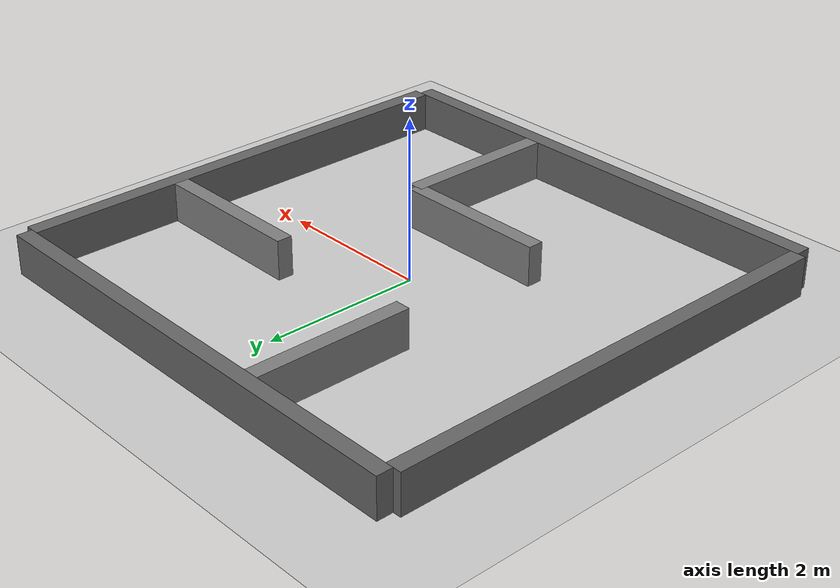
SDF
<?xml version="1.0" ?>
<sdf version="1.6">
  <world name="maze">
    <physics name="4ms" type="ignored">
      <max_step_size>0.004</max_step_size>
      <real_time_factor>1.0</real_time_factor>
      <real_time_update_rate>250</real_time_update_rate>
    </physics>
    <plugin
      filename="gz-sim-physics-system"
      name="gz::sim::systems::Physics">
    </plugin>
    <plugin
      filename="gz-sim-user-commands-system"
      name="gz::sim::systems::UserCommands">
    </plugin>
    <plugin
      filename="gz-sim-scene-broadcaster-system"
      name="gz::sim::systems::SceneBroadcaster">
    </plugin>
    <plugin
      filename="gz-sim-contact-system"
      name="gz::sim::systems::Contact">
    </plugin>
    <plugin
      filename="gz-sim-sensors-system"
      name="gz::sim::systems::Sensors">
      <render_engine>ogre2</render_engine>
    </plugin>

    <light type="directional" name="sun">
      <cast_shadows>true</cast_shadows>
      <pose>0 0 10 0 0 0</pose>
      <diffuse>0.8 0.8 0.8 1</diffuse>
      <specular>0.2 0.2 0.2 1</specular>
      <attenuation>
        <range>1000</range>
        <constant>0.9</constant>
        <linear>0.01</linear>
        <quadratic>0.001</quadratic>
      </attenuation>
      <direction>-0.5 0.1 -0.9</direction>
    </light>

    <model name="ground_plane">
      <static>true</static>
      <link name="link">
        <collision name="collision">
          <geometry>
            <plane>
              <normal>0 0 1</normal>
              <size>100 100</size>
            </plane>
          </geometry>
        </collision>
        <visual name="visual">
          <geometry>
            <plane>
              <normal>0 0 1</normal>
              <size>100 100</size>
            </plane>
          </geometry>
          <material>
            <ambient>0.8 0.8 0.8 1</ambient>
            <diffuse>0.8 0.8 0.8 1</diffuse>
            <specular>0.8 0.8 0.8 1</specular>
          </material>
        </visual>
      </link>
    </model>

    <!-- ===== Outer boundary walls ===== -->

    <!-- South outer wall -->
    <model name="wall_outer_south">
      <static>true</static>
      <pose>0 -3.1 0.25 0 0 0</pose>
      <link name="link">
        <collision name="collision">
          <geometry><box><size>6.2 0.2 0.5</size></box></geometry>
        </collision>
        <visual name="visual">
          <geometry><box><size>6.2 0.2 0.5</size></box></geometry>
          <material>
            <ambient>0.4 0.4 0.4 1</ambient>
            <diffuse>0.4 0.4 0.4 1</diffuse>
            <specular>0.2 0.2 0.2 1</specular>
          </material>
        </visual>
      </link>
    </model>

    <!-- North outer wall -->
    <model name="wall_outer_north">
      <static>true</static>
      <pose>0 3.1 0.25 0 0 0</pose>
      <link name="link">
        <collision name="collision">
          <geometry><box><size>6.2 0.2 0.5</size></box></geometry>
        </collision>
        <visual name="visual">
          <geometry><box><size>6.2 0.2 0.5</size></box></geometry>
          <material>
            <ambient>0.4 0.4 0.4 1</ambient>
            <diffuse>0.4 0.4 0.4 1</diffuse>
            <specular>0.2 0.2 0.2 1</specular>
          </material>
        </visual>
      </link>
    </model>

    <!-- West outer wall (corners covered by north/south walls) -->
    <model name="wall_outer_west">
      <static>true</static>
      <pose>-3.1 0 0.25 0 0 0</pose>
      <link name="link">
        <collision name="collision">
          <geometry><box><size>0.2 6.0 0.5</size></box></geometry>
        </collision>
        <visual name="visual">
          <geometry><box><size>0.2 6.0 0.5</size></box></geometry>
          <material>
            <ambient>0.4 0.4 0.4 1</ambient>
            <diffuse>0.4 0.4 0.4 1</diffuse>
            <specular>0.2 0.2 0.2 1</specular>
          </material>
        </visual>
      </link>
    </model>

    <!-- East outer wall (corners covered by north/south walls) -->
    <model name="wall_outer_east">
      <static>true</static>
      <pose>3.1 0 0.25 0 0 0</pose>
      <link name="link">
        <collision name="collision">
          <geometry><box><size>0.2 6.0 0.5</size></box></geometry>
        </collision>
        <visual name="visual">
          <geometry><box><size>0.2 6.0 0.5</size></box></geometry>
          <material>
            <ambient>0.4 0.4 0.4 1</ambient>
            <diffuse>0.4 0.4 0.4 1</diffuse>
            <specular>0.2 0.2 0.2 1</specular>
          </material>
        </visual>
      </link>
    </model>

    <!-- ===== Interior walls ===== -->

    <!-- Vertical wall at x=1, spanning row 0 (y: -3 to -1).
         Closes passage between cells (1,0) and (2,0). -->
    <model name="wall_inner_e_r0">
      <static>true</static>
      <pose>1.0 -2.0 0.25 0 0 0</pose>
      <link name="link">
        <collision name="collision">
          <geometry><box><size>0.2 2.0 0.5</size></box></geometry>
        </collision>
        <visual name="visual">
          <geometry><box><size>0.2 2.0 0.5</size></box></geometry>
          <material>
            <ambient>0.5 0.5 0.5 1</ambient>
            <diffuse>0.5 0.5 0.5 1</diffuse>
            <specular>0.2 0.2 0.2 1</specular>
          </material>
        </visual>
      </link>
    </model>

    <!-- Horizontal wall at y=-1, spanning col 1 (x: -1 to 1).
         Closes passage between cells (1,0) and (1,1). -->
    <model name="wall_inner_n_c1">
      <static>true</static>
      <pose>0.0 -1.0 0.25 0 0 0</pose>
      <link name="link">
        <collision name="collision">
          <geometry><box><size>2.0 0.2 0.5</size></box></geometry>
        </collision>
        <visual name="visual">
          <geometry><box><size>2.0 0.2 0.5</size></box></geometry>
          <material>
            <ambient>0.5 0.5 0.5 1</ambient>
            <diffuse>0.5 0.5 0.5 1</diffuse>
            <specular>0.2 0.2 0.2 1</specular>
          </material>
        </visual>
      </link>
    </model>

    <!-- Vertical wall at x=-1, spanning row 2 (y: 1 to 3).
         Closes passage between cells (0,2) and (1,2). -->
    <model name="wall_inner_e_r2">
      <static>true</static>
      <pose>-1.0 2.0 0.25 0 0 0</pose>
      <link name="link">
        <collision name="collision">
          <geometry><box><size>0.2 2.0 0.5</size></box></geometry>
        </collision>
        <visual name="visual">
          <geometry><box><size>0.2 2.0 0.5</size></box></geometry>
          <material>
            <ambient>0.5 0.5 0.5 1</ambient>
            <diffuse>0.5 0.5 0.5 1</diffuse>
            <specular>0.2 0.2 0.2 1</specular>
          </material>
        </visual>
      </link>
    </model>

    <!-- Horizontal wall at y=1, spanning col 2 (x: 1 to 3).
         Closes passage between cells (2,1) and (2,2). -->
    <model name="wall_inner_n_c2">
      <static>true</static>
      <pose>2.0 1.0 0.25 0 0 0</pose>
      <link name="link">
        <collision name="collision">
          <geometry><box><size>2.0 0.2 0.5</size></box></geometry>
        </collision>
        <visual name="visual">
          <geometry><box><size>2.0 0.2 0.5</size></box></geometry>
          <material>
            <ambient>0.5 0.5 0.5 1</ambient>
            <diffuse>0.5 0.5 0.5 1</diffuse>
            <specular>0.2 0.2 0.2 1</specular>
          </material>
        </visual>
      </link>
    </model>

  </world>
</sdf>
